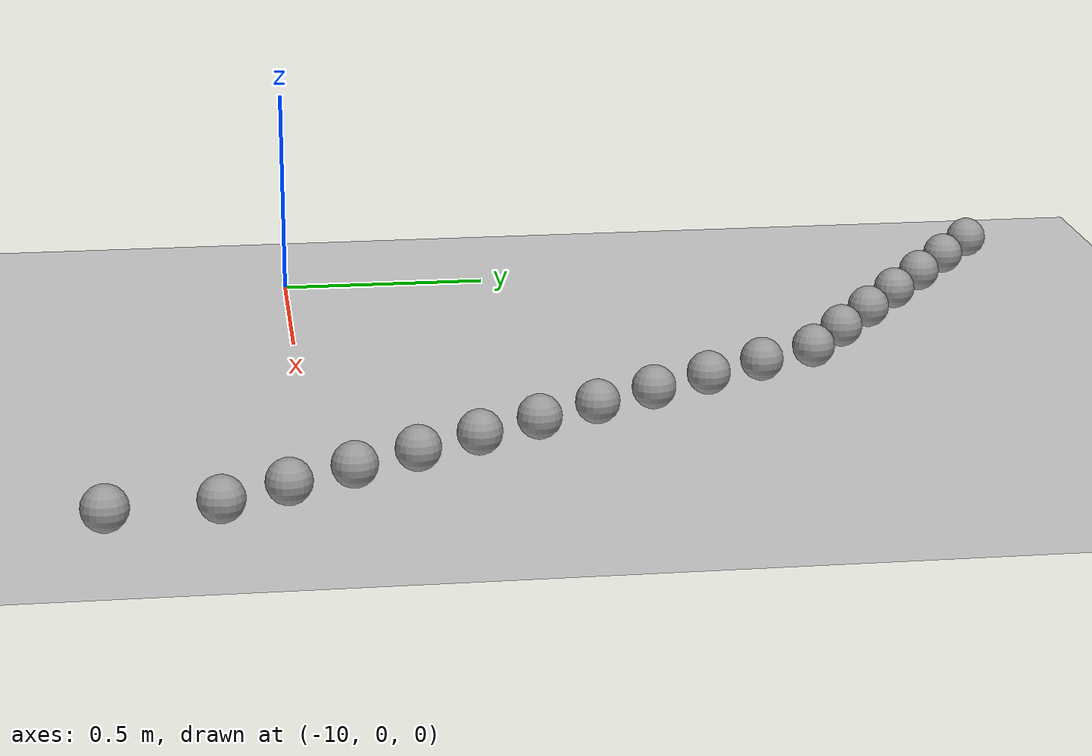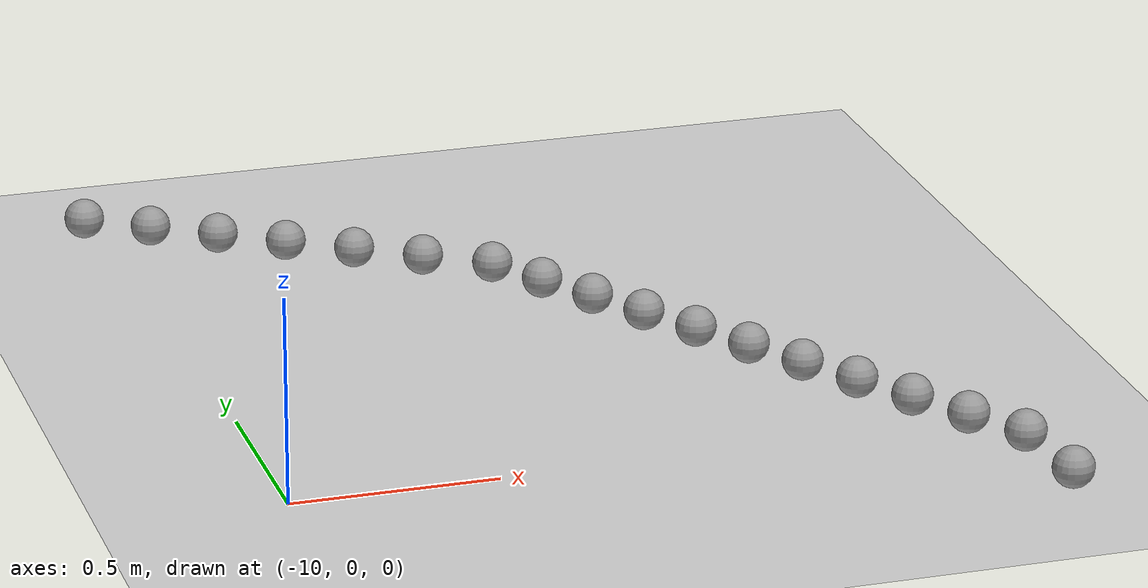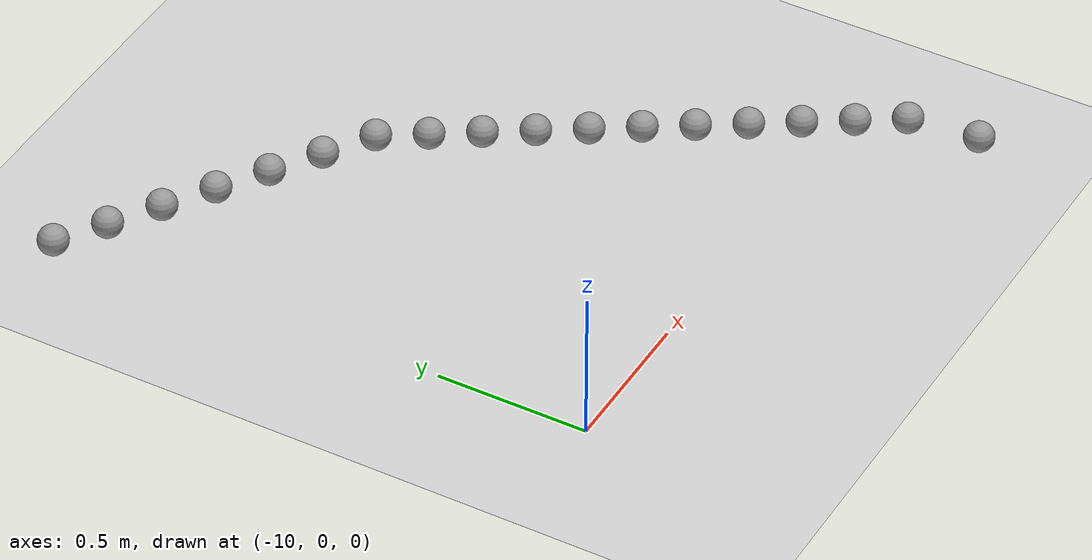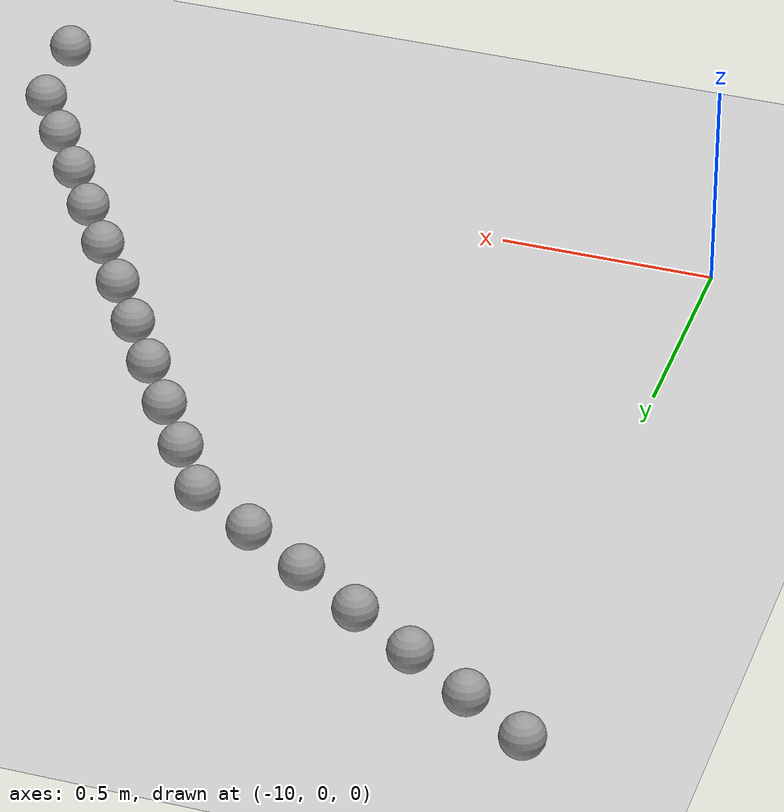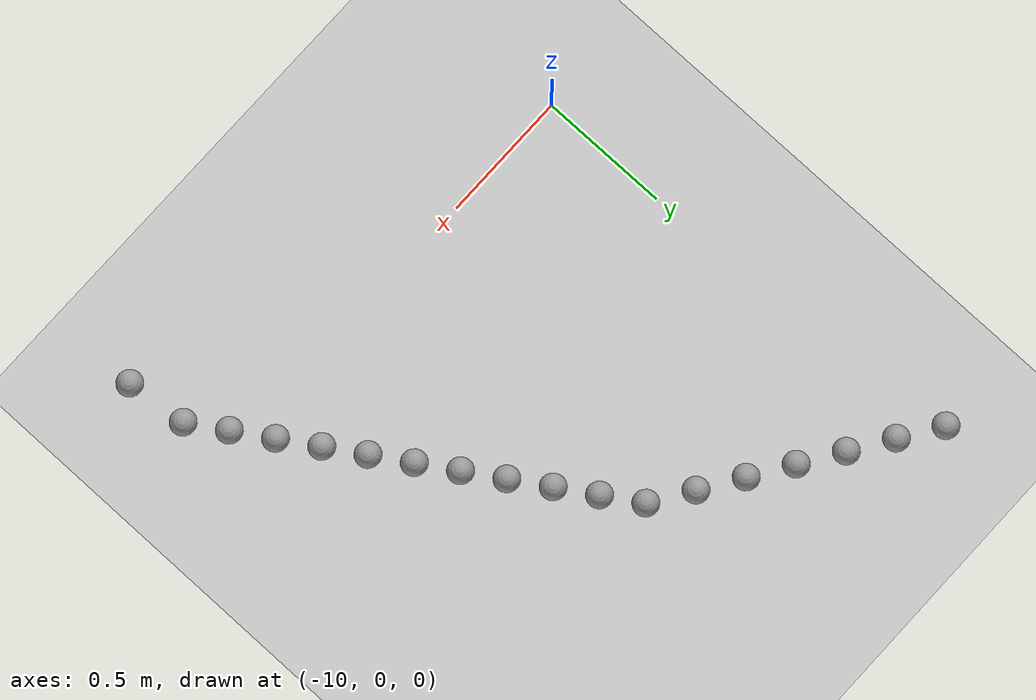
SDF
<sdf version="1.6">
 <world name="default">
  <model name="ground_plane">
   <static>1</static>
   <link name="link">
    <collision name="collision">
     <geometry><plane><normal>0 0 1</normal><size>100 100</size></plane></geometry>
     <surface><friction><ode><mu>100</mu><mu2>50</mu2></ode></friction></surface>
    </collision>
    <visual name="visual">
     <cast_shadows>0</cast_shadows>
     <geometry><plane><normal>0 0 1</normal><size>100 100</size></plane></geometry>
     <material>
      <script><uri>file://media/materials/scripts/gazebo.material</uri><name>Gazebo/Grey</name></script>
     </material>
    </visual>
   </link>
  </model>
  <model name="unit_sphere_0_224">
   <pose>-10.080000 1.794000 0.050000 0 -0 0</pose>
   <link name="link">
    <inertial>
     <mass>1</mass>
     <inertia><ixx>0.1</ixx><ixy>0</ixy><ixz>0</ixz><iyy>0.1</iyy><iyz>0</iyz><izz>0.1</izz></inertia>
    </inertial>
    <collision name="collision"><geometry><sphere><radius>0.050000</radius></sphere></geometry></collision>
    <visual name="visual">
     <geometry><sphere><radius>0.050000</radius></sphere></geometry>
     <material>
      <script><name>Gazebo/Grey</name><uri>file://media/materials/scripts/gazebo.material</uri></script>
     </material>
    </visual>
   </link>
  </model>
  <model name="unit_sphere_0_225">
   <pose>-9.930000 1.695000 0.050000 0 -0 0</pose>
   <link name="link">
    <inertial>
     <mass>1</mass>
     <inertia><ixx>0.1</ixx><ixy>0</ixy><ixz>0</ixz><iyy>0.1</iyy><iyz>0</iyz><izz>0.1</izz></inertia>
    </inertial>
    <collision name="collision"><geometry><sphere><radius>0.050000</radius></sphere></geometry></collision>
    <visual name="visual">
     <geometry><sphere><radius>0.050000</radius></sphere></geometry>
     <material>
      <script><name>Gazebo/Grey</name><uri>file://media/materials/scripts/gazebo.material</uri></script>
     </material>
    </visual>
   </link>
  </model>
  <model name="unit_sphere_0_226">
   <pose>-9.778000 1.596000 0.050000 0 -0 0</pose>
   <link name="link">
    <inertial>
     <mass>1</mass>
     <inertia><ixx>0.1</ixx><ixy>0</ixy><ixz>0</ixz><iyy>0.1</iyy><iyz>0</iyz><izz>0.1</izz></inertia>
    </inertial>
    <collision name="collision"><geometry><sphere><radius>0.050000</radius></sphere></geometry></collision>
    <visual name="visual">
     <geometry><sphere><radius>0.050000</radius></sphere></geometry>
     <material>
      <script><name>Gazebo/Grey</name><uri>file://media/materials/scripts/gazebo.material</uri></script>
     </material>
    </visual>
   </link>
  </model>
  <model name="unit_sphere_0_227">
   <pose>-9.626000 1.497000 0.050000 0 -0 0</pose>
   <link name="link">
    <inertial>
     <mass>1</mass>
     <inertia><ixx>0.1</ixx><ixy>0</ixy><ixz>0</ixz><iyy>0.1</iyy><iyz>0</iyz><izz>0.1</izz></inertia>
    </inertial>
    <collision name="collision"><geometry><sphere><radius>0.050000</radius></sphere></geometry></collision>
    <visual name="visual">
     <geometry><sphere><radius>0.050000</radius></sphere></geometry>
     <material>
      <script><name>Gazebo/Grey</name><uri>file://media/materials/scripts/gazebo.material</uri></script>
     </material>
    </visual>
   </link>
  </model>
  <model name="unit_sphere_0_228">
   <pose>-9.474000 1.398000 0.050000 0 -0 0</pose>
   <link name="link">
    <inertial>
     <mass>1</mass>
     <inertia><ixx>0.1</ixx><ixy>0</ixy><ixz>0</ixz><iyy>0.1</iyy><iyz>0</iyz><izz>0.1</izz></inertia>
    </inertial>
    <collision name="collision"><geometry><sphere><radius>0.050000</radius></sphere></geometry></collision>
    <visual name="visual">
     <geometry><sphere><radius>0.050000</radius></sphere></geometry>
     <material>
      <script><name>Gazebo/Grey</name><uri>file://media/materials/scripts/gazebo.material</uri></script>
     </material>
    </visual>
   </link>
  </model>
  <model name="unit_sphere_0_229">
   <pose>-9.322000 1.299000 0.050000 0 -0 0</pose>
   <link name="link">
    <inertial>
     <mass>1</mass>
     <inertia><ixx>0.1</ixx><ixy>0</ixy><ixz>0</ixz><iyy>0.1</iyy><iyz>0</iyz><izz>0.1</izz></inertia>
    </inertial>
    <collision name="collision"><geometry><sphere><radius>0.050000</radius></sphere></geometry></collision>
    <visual name="visual">
     <geometry><sphere><radius>0.050000</radius></sphere></geometry>
     <material>
      <script><name>Gazebo/Grey</name><uri>file://media/materials/scripts/gazebo.material</uri></script>
     </material>
    </visual>
   </link>
  </model>
  <model name="unit_sphere_0_230">
   <pose>-9.170000 1.200000 0.050000 0 -0 0</pose>
   <link name="link">
    <inertial>
     <mass>1</mass>
     <inertia><ixx>0.1</ixx><ixy>0</ixy><ixz>0</ixz><iyy>0.1</iyy><iyz>0</iyz><izz>0.1</izz></inertia>
    </inertial>
    <collision name="collision"><geometry><sphere><radius>0.050000</radius></sphere></geometry></collision>
    <visual name="visual">
     <geometry><sphere><radius>0.050000</radius></sphere></geometry>
     <material>
      <script><name>Gazebo/Grey</name><uri>file://media/materials/scripts/gazebo.material</uri></script>
     </material>
    </visual>
   </link>
  </model>
  <model name="unit_sphere_0_231">
   <pose>-9.082000 1.061000 0.050000 0 -0 0</pose>
   <link name="link">
    <inertial>
     <mass>1</mass>
     <inertia><ixx>0.1</ixx><ixy>0</ixy><ixz>0</ixz><iyy>0.1</iyy><iyz>0</iyz><izz>0.1</izz></inertia>
    </inertial>
    <collision name="collision"><geometry><sphere><radius>0.050000</radius></sphere></geometry></collision>
    <visual name="visual">
     <geometry><sphere><radius>0.050000</radius></sphere></geometry>
     <material>
      <script><name>Gazebo/Grey</name><uri>file://media/materials/scripts/gazebo.material</uri></script>
     </material>
    </visual>
   </link>
  </model>
  <model name="unit_sphere_0_232">
   <pose>-8.994000 0.922000 0.050000 0 -0 0</pose>
   <link name="link">
    <inertial>
     <mass>1</mass>
     <inertia><ixx>0.1</ixx><ixy>0</ixy><ixz>0</ixz><iyy>0.1</iyy><iyz>0</iyz><izz>0.1</izz></inertia>
    </inertial>
    <collision name="collision"><geometry><sphere><radius>0.050000</radius></sphere></geometry></collision>
    <visual name="visual">
     <geometry><sphere><radius>0.050000</radius></sphere></geometry>
     <material>
      <script><name>Gazebo/Grey</name><uri>file://media/materials/scripts/gazebo.material</uri></script>
     </material>
    </visual>
   </link>
  </model>
  <model name="unit_sphere_0_233">
   <pose>-8.906000 0.783000 0.050000 0 -0 0</pose>
   <link name="link">
    <inertial>
     <mass>1</mass>
     <inertia><ixx>0.1</ixx><ixy>0</ixy><ixz>0</ixz><iyy>0.1</iyy><iyz>0</iyz><izz>0.1</izz></inertia>
    </inertial>
    <collision name="collision"><geometry><sphere><radius>0.050000</radius></sphere></geometry></collision>
    <visual name="visual">
     <geometry><sphere><radius>0.050000</radius></sphere></geometry>
     <material>
      <script><name>Gazebo/Grey</name><uri>file://media/materials/scripts/gazebo.material</uri></script>
     </material>
    </visual>
   </link>
  </model>
  <model name="unit_sphere_0_234">
   <pose>-8.818000 0.644000 0.050000 0 -0 0</pose>
   <link name="link">
    <inertial>
     <mass>1</mass>
     <inertia><ixx>0.1</ixx><ixy>0</ixy><ixz>0</ixz><iyy>0.1</iyy><iyz>0</iyz><izz>0.1</izz></inertia>
    </inertial>
    <collision name="collision"><geometry><sphere><radius>0.050000</radius></sphere></geometry></collision>
    <visual name="visual">
     <geometry><sphere><radius>0.050000</radius></sphere></geometry>
     <material>
      <script><name>Gazebo/Grey</name><uri>file://media/materials/scripts/gazebo.material</uri></script>
     </material>
    </visual>
   </link>
  </model>
  <model name="unit_sphere_0_235">
   <pose>-8.730000 0.505000 0.050000 0 -0 0</pose>
   <link name="link">
    <inertial>
     <mass>1</mass>
     <inertia><ixx>0.1</ixx><ixy>0</ixy><ixz>0</ixz><iyy>0.1</iyy><iyz>0</iyz><izz>0.1</izz></inertia>
    </inertial>
    <collision name="collision"><geometry><sphere><radius>0.050000</radius></sphere></geometry></collision>
    <visual name="visual">
     <geometry><sphere><radius>0.050000</radius></sphere></geometry>
     <material>
      <script><name>Gazebo/Grey</name><uri>file://media/materials/scripts/gazebo.material</uri></script>
     </material>
    </visual>
   </link>
  </model>
  <model name="unit_sphere_0_236">
   <pose>-8.642000 0.366000 0.050000 0 -0 0</pose>
   <link name="link">
    <inertial>
     <mass>1</mass>
     <inertia><ixx>0.1</ixx><ixy>0</ixy><ixz>0</ixz><iyy>0.1</iyy><iyz>0</iyz><izz>0.1</izz></inertia>
    </inertial>
    <collision name="collision"><geometry><sphere><radius>0.050000</radius></sphere></geometry></collision>
    <visual name="visual">
     <geometry><sphere><radius>0.050000</radius></sphere></geometry>
     <material>
      <script><name>Gazebo/Grey</name><uri>file://media/materials/scripts/gazebo.material</uri></script>
     </material>
    </visual>
   </link>
  </model>
  <model name="unit_sphere_0_237">
   <pose>-8.554000 0.227000 0.050000 0 -0 0</pose>
   <link name="link">
    <inertial>
     <mass>1</mass>
     <inertia><ixx>0.1</ixx><ixy>0</ixy><ixz>0</ixz><iyy>0.1</iyy><iyz>0</iyz><izz>0.1</izz></inertia>
    </inertial>
    <collision name="collision"><geometry><sphere><radius>0.050000</radius></sphere></geometry></collision>
    <visual name="visual">
     <geometry><sphere><radius>0.050000</radius></sphere></geometry>
     <material>
      <script><name>Gazebo/Grey</name><uri>file://media/materials/scripts/gazebo.material</uri></script>
     </material>
    </visual>
   </link>
  </model>
  <model name="unit_sphere_0_238">
   <pose>-8.466000 0.088000 0.050000 0 -0 0</pose>
   <link name="link">
    <inertial>
     <mass>1</mass>
     <inertia><ixx>0.1</ixx><ixy>0</ixy><ixz>0</ixz><iyy>0.1</iyy><iyz>0</iyz><izz>0.1</izz></inertia>
    </inertial>
    <collision name="collision"><geometry><sphere><radius>0.050000</radius></sphere></geometry></collision>
    <visual name="visual">
     <geometry><sphere><radius>0.050000</radius></sphere></geometry>
     <material>
      <script><name>Gazebo/Grey</name><uri>file://media/materials/scripts/gazebo.material</uri></script>
     </material>
    </visual>
   </link>
  </model>
  <model name="unit_sphere_0_239">
   <pose>-8.378000 -0.051000 0.050000 0 -0 0</pose>
   <link name="link">
    <inertial>
     <mass>1</mass>
     <inertia><ixx>0.1</ixx><ixy>0</ixy><ixz>0</ixz><iyy>0.1</iyy><iyz>0</iyz><izz>0.1</izz></inertia>
    </inertial>
    <collision name="collision"><geometry><sphere><radius>0.050000</radius></sphere></geometry></collision>
    <visual name="visual">
     <geometry><sphere><radius>0.050000</radius></sphere></geometry>
     <material>
      <script><name>Gazebo/Grey</name><uri>file://media/materials/scripts/gazebo.material</uri></script>
     </material>
    </visual>
   </link>
  </model>
  <model name="unit_sphere_0_240">
   <pose>-8.290000 -0.190000 0.050000 0 -0 0</pose>
   <link name="link">
    <inertial>
     <mass>1</mass>
     <inertia><ixx>0.1</ixx><ixy>0</ixy><ixz>0</ixz><iyy>0.1</iyy><iyz>0</iyz><izz>0.1</izz></inertia>
    </inertial>
    <collision name="collision"><geometry><sphere><radius>0.050000</radius></sphere></geometry></collision>
    <visual name="visual">
     <geometry><sphere><radius>0.050000</radius></sphere></geometry>
     <material>
      <script><name>Gazebo/Grey</name><uri>file://media/materials/scripts/gazebo.material</uri></script>
     </material>
    </visual>
   </link>
  </model>
  <model name="unit_sphere_0_241">
   <pose>-8.265000 -0.422000 0.050000 0 -0 0</pose>
   <link name="link">
    <inertial>
     <mass>1</mass>
     <inertia><ixx>0.1</ixx><ixy>0</ixy><ixz>0</ixz><iyy>0.1</iyy><iyz>0</iyz><izz>0.1</izz></inertia>
    </inertial>
    <collision name="collision"><geometry><sphere><radius>0.050000</radius></sphere></geometry></collision>
    <visual name="visual">
     <geometry><sphere><radius>0.050000</radius></sphere></geometry>
     <material>
      <script><name>Gazebo/Grey</name><uri>file://media/materials/scripts/gazebo.material</uri></script>
     </material>
    </visual>
   </link>
  </model>
 </world>
</sdf>
